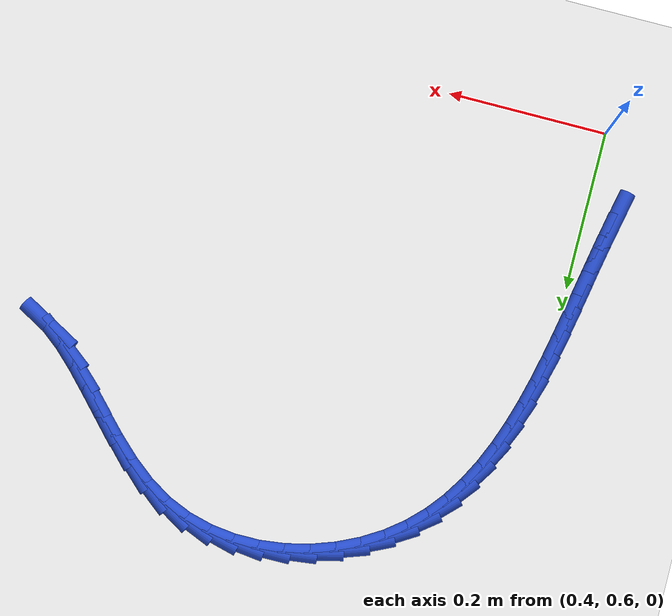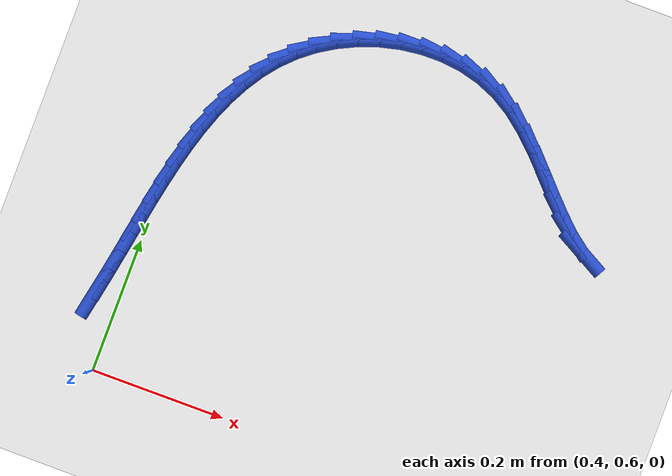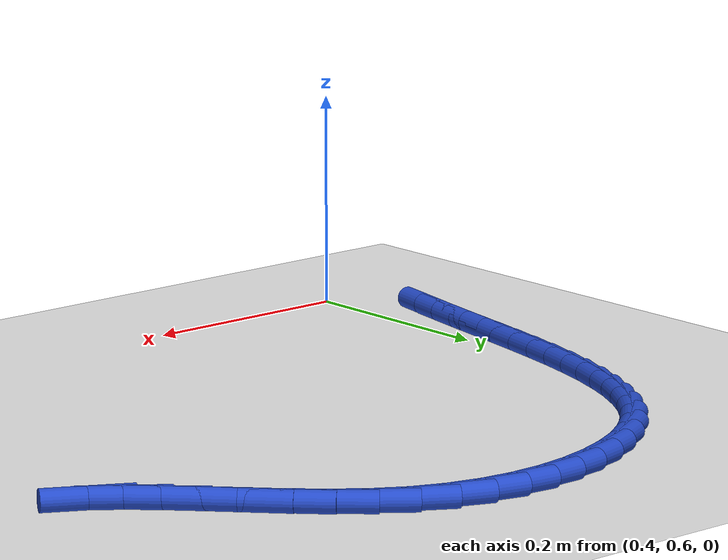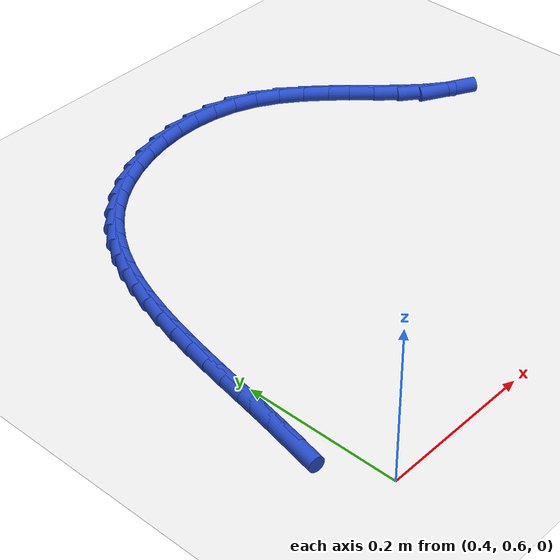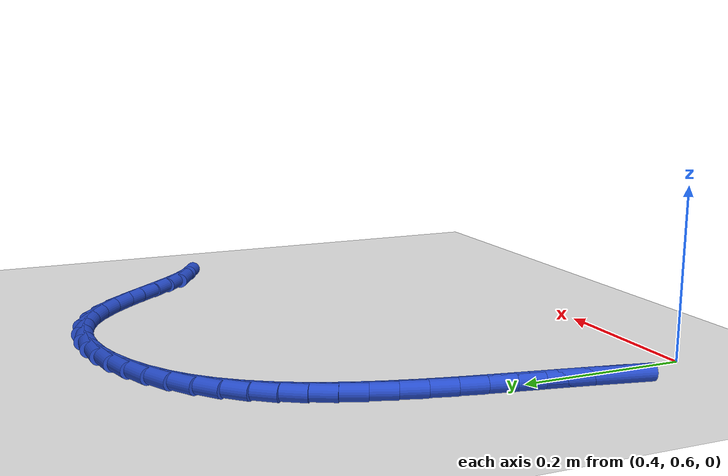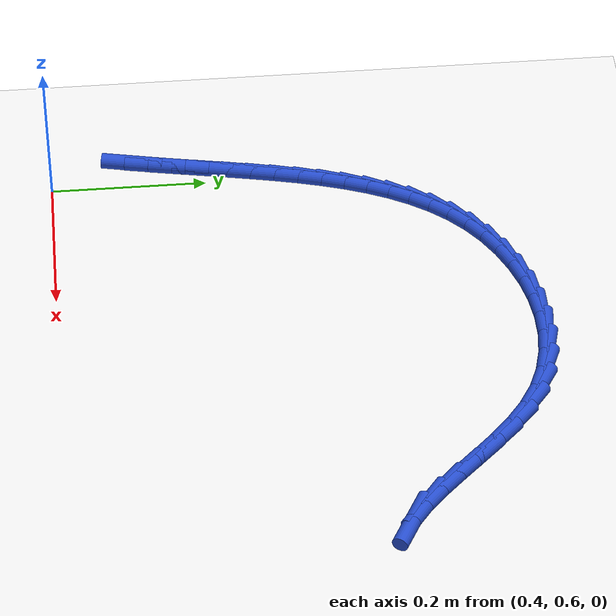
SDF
<sdf version="1.6">
 <world name="default">
  <model name="ground_plane">
   <static>1</static>
   <link name="link">
    <collision name="collision">
     <geometry><plane><normal>0 0 1</normal><size>100 100</size></plane></geometry>
     <surface><friction><ode><mu>100</mu><mu2>50</mu2></ode></friction></surface>
    </collision>
    <visual name="visual">
     <cast_shadows>0</cast_shadows>
     <geometry><plane><normal>0 0 1</normal><size>100 100</size></plane></geometry>
     <material>
      <script><uri>file://media/materials/scripts/gazebo.material</uri><name>Gazebo/WhiteGlow</name></script>
     </material>
    </visual>
   </link>
  </model>
  <model name="line">
   <link name="link_28">
    <pose>0.3645151453646553 0.7063074297162247 0.01 0 1.57 1.369599622309432</pose>
    <collision name="collision">
     <geometry><cylinder><radius>0.01</radius><length>0.08</length></cylinder></geometry>
    </collision>
    <visual name="visual">
     <material>
      <script><name>Gazebo/Blue</name><uri>file://media/materials/scripts/gazebo.material</uri></script>
     </material>
     <geometry><cylinder><radius>0.01</radius><length>0.08</length></cylinder></geometry>
    </visual>
   </link>
   <link name="link_29">
    <pose>0.37067295193602257 0.7364992358731985 0.01 0 1.57 1.383164749995835</pose>
    <collision name="collision">
     <geometry><cylinder><radius>0.01</radius><length>0.08</length></cylinder></geometry>
    </collision>
    <visual name="visual">
     <material>
      <script><name>Gazebo/Blue</name><uri>file://media/materials/scripts/gazebo.material</uri></script>
     </material>
     <geometry><cylinder><radius>0.01</radius><length>0.08</length></cylinder></geometry>
    </visual>
   </link>
   <link name="link_30">
    <pose>0.37647043610760544 0.7670340179128394 0.01 0 1.57 1.390019972079069</pose>
    <collision name="collision">
     <geometry><cylinder><radius>0.01</radius><length>0.08</length></cylinder></geometry>
    </collision>
    <visual name="visual">
     <material>
      <script><name>Gazebo/Blue</name><uri>file://media/materials/scripts/gazebo.material</uri></script>
     </material>
     <geometry><cylinder><radius>0.01</radius><length>0.08</length></cylinder></geometry>
    </visual>
   </link>
   <link name="link_31">
    <pose>0.38209696982681984 0.7978185079482861 0.01 0 1.57 1.3903380978581459</pose>
    <collision name="collision">
     <geometry><cylinder><radius>0.01</radius><length>0.08</length></cylinder></geometry>
    </collision>
    <visual name="visual">
     <material>
      <script><name>Gazebo/Blue</name><uri>file://media/materials/scripts/gazebo.material</uri></script>
     </material>
     <geometry><cylinder><radius>0.01</radius><length>0.08</length></cylinder></geometry>
    </visual>
   </link>
   <link name="link_32">
    <pose>0.3877419250410815 0.8287594380926777 0.01 0 1.57 1.3842147053571736</pose>
    <collision name="collision">
     <geometry><cylinder><radius>0.01</radius><length>0.08</length></cylinder></geometry>
    </collision>
    <visual name="visual">
     <material>
      <script><name>Gazebo/Blue</name><uri>file://media/materials/scripts/gazebo.material</uri></script>
     </material>
     <geometry><cylinder><radius>0.01</radius><length>0.08</length></cylinder></geometry>
    </visual>
   </link>
   <link name="link_33">
    <pose>0.3935947596824988 0.8597633428944247 0.01 0 1.57 1.3709828750161386</pose>
    <collision name="collision">
     <geometry><cylinder><radius>0.01</radius><length>0.08</length></cylinder></geometry>
    </collision>
    <visual name="visual">
     <material>
      <script><name>Gazebo/Blue</name><uri>file://media/materials/scripts/gazebo.material</uri></script>
     </material>
     <geometry><cylinder><radius>0.01</radius><length>0.08</length></cylinder></geometry>
    </visual>
   </link>
   <link name="link_34">
    <pose>0.3998602421210087 0.8907015785181126 0.01 0 1.57 1.3490066683193687</pose>
    <collision name="collision">
     <geometry><cylinder><radius>0.01</radius><length>0.08</length></cylinder></geometry>
    </collision>
    <visual name="visual">
     <material>
      <script><name>Gazebo/Blue</name><uri>file://media/materials/scripts/gazebo.material</uri></script>
     </material>
     <geometry><cylinder><radius>0.01</radius><length>0.08</length></cylinder></geometry>
    </visual>
   </link>
   <link name="link_35">
    <pose>0.40677596760440515 0.9213700756883832 0.01 0 1.57 1.3176785860591123</pose>
    <collision name="collision">
     <geometry><cylinder><radius>0.01</radius><length>0.08</length></cylinder></geometry>
    </collision>
    <visual name="visual">
     <material>
      <script><name>Gazebo/Blue</name><uri>file://media/materials/scripts/gazebo.material</uri></script>
     </material>
     <geometry><cylinder><radius>0.01</radius><length>0.08</length></cylinder></geometry>
    </visual>
   </link>
   <link name="link_36">
    <pose>0.4145837736025517 0.9515550178896063 0.01 0 1.57 1.276372413049469</pose>
    <collision name="collision">
     <geometry><cylinder><radius>0.01</radius><length>0.08</length></cylinder></geometry>
    </collision>
    <visual name="visual">
     <material>
      <script><name>Gazebo/Blue</name><uri>file://media/materials/scripts/gazebo.material</uri></script>
     </material>
     <geometry><cylinder><radius>0.01</radius><length>0.08</length></cylinder></geometry>
    </visual>
   </link>
   <link name="link_37">
    <pose>0.42352549758531144 0.9810425886061497 0.01 0 1.57 1.2243122536844446</pose>
    <collision name="collision">
     <geometry><cylinder><radius>0.01</radius><length>0.08</length></cylinder></geometry>
    </collision>
    <visual name="visual">
     <material>
      <script><name>Gazebo/Blue</name><uri>file://media/materials/scripts/gazebo.material</uri></script>
     </material>
     <geometry><cylinder><radius>0.01</radius><length>0.08</length></cylinder></geometry>
    </visual>
   </link>
   <link name="link_38">
    <pose>0.43384297702254754 1.0096189713223822 0.01 0 1.57 1.1606784672435109</pose>
    <collision name="collision">
     <geometry><cylinder><radius>0.01</radius><length>0.08</length></cylinder></geometry>
    </collision>
    <visual name="visual">
     <material>
      <script><name>Gazebo/Blue</name><uri>file://media/materials/scripts/gazebo.material</uri></script>
     </material>
     <geometry><cylinder><radius>0.01</radius><length>0.08</length></cylinder></geometry>
    </visual>
   </link>
   <link name="link_39">
    <pose>0.445778049384123 1.0370703495226725 0.01 0 1.57 1.0847886627277465</pose>
    <collision name="collision">
     <geometry><cylinder><radius>0.01</radius><length>0.08</length></cylinder></geometry>
    </collision>
    <visual name="visual">
     <material>
      <script><name>Gazebo/Blue</name><uri>file://media/materials/scripts/gazebo.material</uri></script>
     </material>
     <geometry><cylinder><radius>0.01</radius><length>0.08</length></cylinder></geometry>
    </visual>
   </link>
   <link name="link_40">
    <pose>0.45957255213990134 1.0631829066913896 0.01 0 1.57 0.9963750416095719</pose>
    <collision name="collision">
     <geometry><cylinder><radius>0.01</radius><length>0.08</length></cylinder></geometry>
    </collision>
    <visual name="visual">
     <material>
      <script><name>Gazebo/Blue</name><uri>file://media/materials/scripts/gazebo.material</uri></script>
     </material>
     <geometry><cylinder><radius>0.01</radius><length>0.08</length></cylinder></geometry>
    </visual>
   </link>
   <link name="link_41">
    <pose>0.4754683227597457 1.0877428263129019 0.01 0 1.57 0.8959456198416729</pose>
    <collision name="collision">
     <geometry><cylinder><radius>0.01</radius><length>0.08</length></cylinder></geometry>
    </collision>
    <visual name="visual">
     <material>
      <script><name>Gazebo/Blue</name><uri>file://media/materials/scripts/gazebo.material</uri></script>
     </material>
     <geometry><cylinder><radius>0.01</radius><length>0.08</length></cylinder></geometry>
    </visual>
   </link>
   <link name="link_42">
    <pose>0.49370719871351926 1.110536291871578 0.01 0 1.57 0.7851430111621526</pose>
    <collision name="collision">
     <geometry><cylinder><radius>0.01</radius><length>0.08</length></cylinder></geometry>
    </collision>
    <visual name="visual">
     <material>
      <script><name>Gazebo/Blue</name><uri>file://media/materials/scripts/gazebo.material</uri></script>
     </material>
     <geometry><cylinder><radius>0.01</radius><length>0.08</length></cylinder></geometry>
    </visual>
   </link>
   <link name="link_43">
    <pose>0.5145310174710853 1.1313494868517873 0.01 0 1.57 0.6679692432426003</pose>
    <collision name="collision">
     <geometry><cylinder><radius>0.01</radius><length>0.08</length></cylinder></geometry>
    </collision>
    <visual name="visual">
     <material>
      <script><name>Gazebo/Blue</name><uri>file://media/materials/scripts/gazebo.material</uri></script>
     </material>
     <geometry><cylinder><radius>0.01</radius><length>0.08</length></cylinder></geometry>
    </visual>
   </link>
   <link name="link_44">
    <pose>0.5381275358078345 1.1499660563740692 0.01 0 1.57 0.5547264463963215</pose>
    <collision name="collision">
     <geometry><cylinder><radius>0.01</radius><length>0.08</length></cylinder></geometry>
    </collision>
    <visual name="visual">
     <material>
      <script><name>Gazebo/Blue</name><uri>file://media/materials/scripts/gazebo.material</uri></script>
     </material>
     <geometry><cylinder><radius>0.01</radius><length>0.08</length></cylinder></geometry>
    </visual>
   </link>
   <link name="link_45">
    <pose>0.5642447678131123 1.1661490055331876 0.01 0 1.57 0.44693477517919256</pose>
    <collision name="collision">
     <geometry><cylinder><radius>0.01</radius><length>0.08</length></cylinder></geometry>
    </collision>
    <visual name="visual">
     <material>
      <script><name>Gazebo/Blue</name><uri>file://media/materials/scripts/gazebo.material</uri></script>
     </material>
     <geometry><cylinder><radius>0.01</radius><length>0.08</length></cylinder></geometry>
    </visual>
   </link>
   <link name="link_46">
    <pose>0.5924167917291747 1.1796512980030045 0.01 0 1.57 0.34141825438717727</pose>
    <collision name="collision">
     <geometry><cylinder><radius>0.01</radius><length>0.08</length></cylinder></geometry>
    </collision>
    <visual name="visual">
     <material>
      <script><name>Gazebo/Blue</name><uri>file://media/materials/scripts/gazebo.material</uri></script>
     </material>
     <geometry><cylinder><radius>0.01</radius><length>0.08</length></cylinder></geometry>
    </visual>
   </link>
   <link name="link_47">
    <pose>0.6221762583141995 1.190225830456135 0.01 0 1.57 0.23519510703398594</pose>
    <collision name="collision">
     <geometry><cylinder><radius>0.01</radius><length>0.08</length></cylinder></geometry>
    </collision>
    <visual name="visual">
     <material>
      <script><name>Gazebo/Blue</name><uri>file://media/materials/scripts/gazebo.material</uri></script>
     </material>
     <geometry><cylinder><radius>0.01</radius><length>0.08</length></cylinder></geometry>
    </visual>
   </link>
   <link name="link_48">
    <pose>0.6530558183263643 1.1976254995651947 0.01 0 1.57 0.12548409048501724</pose>
    <collision name="collision">
     <geometry><cylinder><radius>0.01</radius><length>0.08</length></cylinder></geometry>
    </collision>
    <visual name="visual">
     <material>
      <script><name>Gazebo/Blue</name><uri>file://media/materials/scripts/gazebo.material</uri></script>
     </material>
     <geometry><cylinder><radius>0.01</radius><length>0.08</length></cylinder></geometry>
    </visual>
   </link>
   <link name="link_49">
    <pose>0.6845881225238463 1.2016032020027996 0.01 0 1.57 0.009730299068164599</pose>
    <collision name="collision">
     <geometry><cylinder><radius>0.01</radius><length>0.08</length></cylinder></geometry>
    </collision>
    <visual name="visual">
     <material>
      <script><name>Gazebo/Blue</name><uri>file://media/materials/scripts/gazebo.material</uri></script>
     </material>
     <geometry><cylinder><radius>0.01</radius><length>0.08</length></cylinder></geometry>
    </visual>
   </link>
   <link name="link_50">
    <pose>0.7163058216648232 1.201911834441565 0.01 0 1.57 -0.11425936196864711</pose>
    <collision name="collision">
     <geometry><cylinder><radius>0.01</radius><length>0.08</length></cylinder></geometry>
    </collision>
    <visual name="visual">
     <material>
      <script><name>Gazebo/Blue</name><uri>file://media/materials/scripts/gazebo.material</uri></script>
     </material>
     <geometry><cylinder><radius>0.01</radius><length>0.08</length></cylinder></geometry>
    </visual>
   </link>
   <link name="link_51">
    <pose>0.747741566507472 1.1983042935541062 0.01 0 1.57 -0.24801910159536206</pose>
    <collision name="collision">
     <geometry><cylinder><radius>0.01</radius><length>0.08</length></cylinder></geometry>
    </collision>
    <visual name="visual">
     <material>
      <script><name>Gazebo/Blue</name><uri>file://media/materials/scripts/gazebo.material</uri></script>
     </material>
     <geometry><cylinder><radius>0.01</radius><length>0.08</length></cylinder></geometry>
    </visual>
   </link>
   <link name="link_52">
    <pose>0.7784280078099711 1.1905334760130386 0.01 0 1.57 -0.39195771539659013</pose>
    <collision name="collision">
     <geometry><cylinder><radius>0.01</radius><length>0.08</length></cylinder></geometry>
    </collision>
    <visual name="visual">
     <material>
      <script><name>Gazebo/Blue</name><uri>file://media/materials/scripts/gazebo.material</uri></script>
     </material>
     <geometry><cylinder><radius>0.01</radius><length>0.08</length></cylinder></geometry>
    </visual>
   </link>
   <link name="link_53">
    <pose>0.8078977963304974 1.178352278490978 0.01 0 1.57 -0.5423520050847065</pose>
    <collision name="collision">
     <geometry><cylinder><radius>0.01</radius><length>0.08</length></cylinder></geometry>
    </collision>
    <visual name="visual">
     <material>
      <script><name>Gazebo/Blue</name><uri>file://media/materials/scripts/gazebo.material</uri></script>
     </material>
     <geometry><cylinder><radius>0.01</radius><length>0.08</length></cylinder></geometry>
    </visual>
   </link>
   <link name="link_54">
    <pose>0.8357206865037328 1.1615853351074148 0.01 0 1.57 -0.6681780196593755</pose>
    <collision name="collision">
     <geometry><cylinder><radius>0.01</radius><length>0.08</length></cylinder></geometry>
    </collision>
    <visual name="visual">
     <material>
      <script><name>Gazebo/Blue</name><uri>file://media/materials/scripts/gazebo.material</uri></script>
     </material>
     <geometry><cylinder><radius>0.01</radius><length>0.08</length></cylinder></geometry>
    </visual>
   </link>
   <link name="link_55">
    <pose>0.8619097831241248 1.1409144678908958 0.01 0 1.57 -0.753626723761245</pose>
    <collision name="collision">
     <geometry><cylinder><radius>0.01</radius><length>0.08</length></cylinder></geometry>
    </collision>
    <visual name="visual">
     <material>
      <script><name>Gazebo/Blue</name><uri>file://media/materials/scripts/gazebo.material</uri></script>
     </material>
     <geometry><cylinder><radius>0.01</radius><length>0.08</length></cylinder></geometry>
    </visual>
   </link>
   <link name="link_56">
    <pose>0.8867700365199137 1.117585762453762 0.01 0 1.57 -0.8036997205169869</pose>
    <collision name="collision">
     <geometry><cylinder><radius>0.01</radius><length>0.08</length></cylinder></geometry>
    </collision>
    <visual name="visual">
     <material>
      <script><name>Gazebo/Blue</name><uri>file://media/materials/scripts/gazebo.material</uri></script>
     </material>
     <geometry><cylinder><radius>0.01</radius><length>0.08</length></cylinder></geometry>
    </visual>
   </link>
   <link name="link_57">
    <pose>0.9106115290743507 1.092855226889318 0.01 0 1.57 -0.8216990933541376</pose>
    <collision name="collision">
     <geometry><cylinder><radius>0.01</radius><length>0.08</length></cylinder></geometry>
    </collision>
    <visual name="visual">
     <material>
      <script><name>Gazebo/Blue</name><uri>file://media/materials/scripts/gazebo.material</uri></script>
     </material>
     <geometry><cylinder><radius>0.01</radius><length>0.08</length></cylinder></geometry>
    </visual>
   </link>
   <link name="link_58">
    <pose>0.9337443431706884 1.0679788692908685 0.01 0 1.57 -0.8075868840673326</pose>
    <collision name="collision">
     <geometry><cylinder><radius>0.01</radius><length>0.08</length></cylinder></geometry>
    </collision>
    <visual name="visual">
     <material>
      <script><name>Gazebo/Blue</name><uri>file://media/materials/scripts/gazebo.material</uri></script>
     </material>
     <geometry><cylinder><radius>0.01</radius><length>0.08</length></cylinder></geometry>
    </visual>
   </link>
   <link name="link_59">
    <pose>0.9564785611921783 1.0442126977517183 0.01 0 1.57 -0.7571230885375823</pose>
    <collision name="collision">
     <geometry><cylinder><radius>0.01</radius><length>0.08</length></cylinder></geometry>
    </collision>
    <visual name="visual">
     <material>
      <script><name>Gazebo/Blue</name><uri>file://media/materials/scripts/gazebo.material</uri></script>
     </material>
     <geometry><cylinder><radius>0.01</radius><length>0.08</length></cylinder></geometry>
    </visual>
   </link>
   <link name="link_60">
    <pose>0.9791242655220727 1.0228127203651722 0.01 0 1.57 -0.6608283773014858</pose>
    <collision name="collision">
     <geometry><cylinder><radius>0.01</radius><length>0.08</length></cylinder></geometry>
    </collision>
    <visual name="visual">
     <material>
      <script><name>Gazebo/Blue</name><uri>file://media/materials/scripts/gazebo.material</uri></script>
     </material>
     <geometry><cylinder><radius>0.01</radius><length>0.08</length></cylinder></geometry>
    </visual>
   </link>
   <link name="link_61">
    <pose>1.0019915385436233 1.0050349452245353 0.01 0 1.57 -0.5038321546648872</pose>
    <collision name="collision">
     <geometry><cylinder><radius>0.01</radius><length>0.08</length></cylinder></geometry>
    </collision>
    <visual name="visual">
     <material>
      <script><name>Gazebo/Blue</name><uri>file://media/materials/scripts/gazebo.material</uri></script>
     </material>
     <geometry><cylinder><radius>0.01</radius><length>0.08</length></cylinder></geometry>
    </visual>
   </link>
  </model>
 </world>
</sdf>
